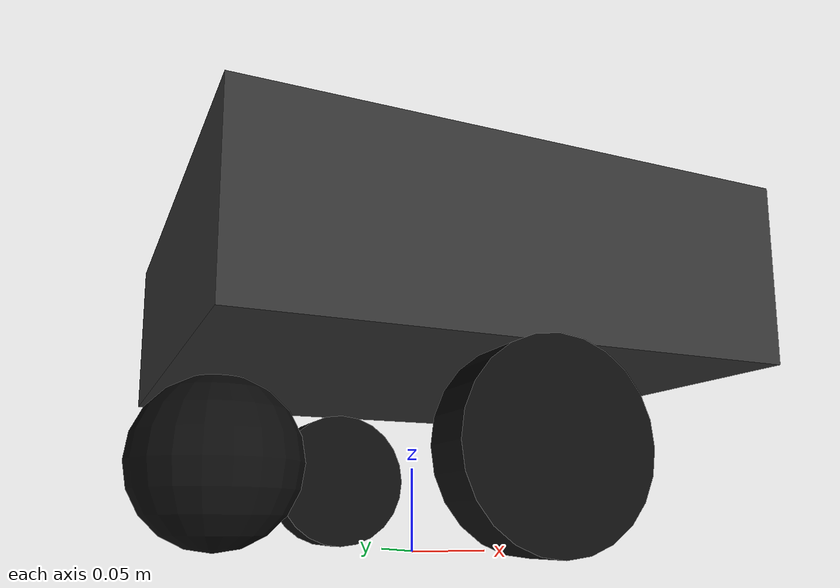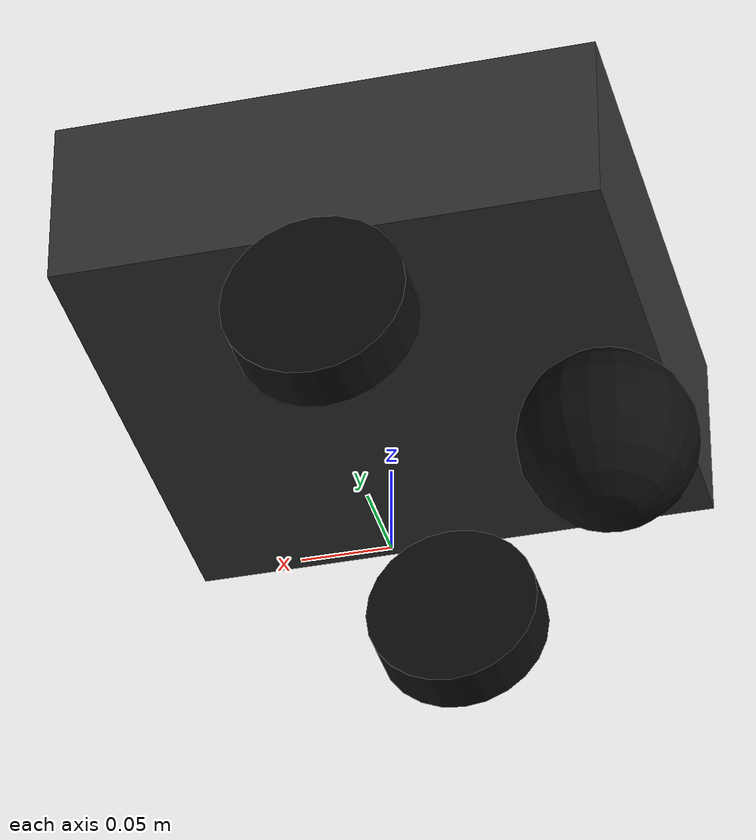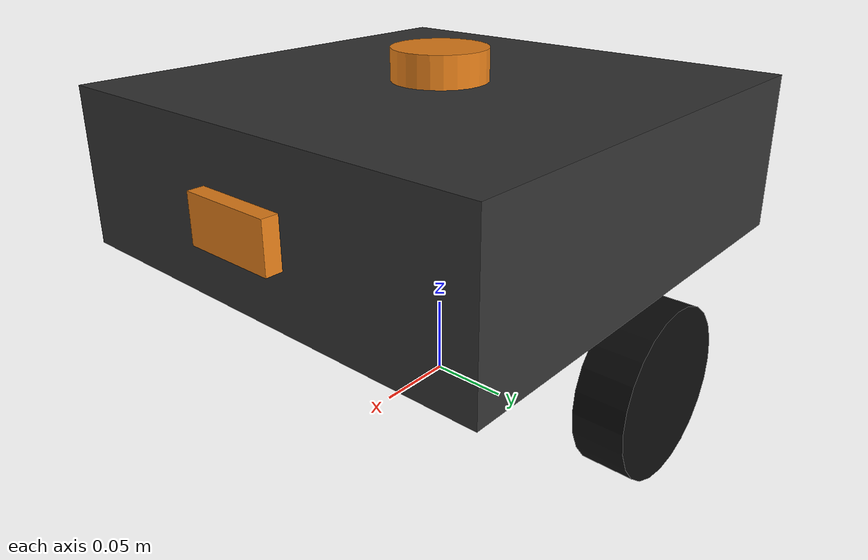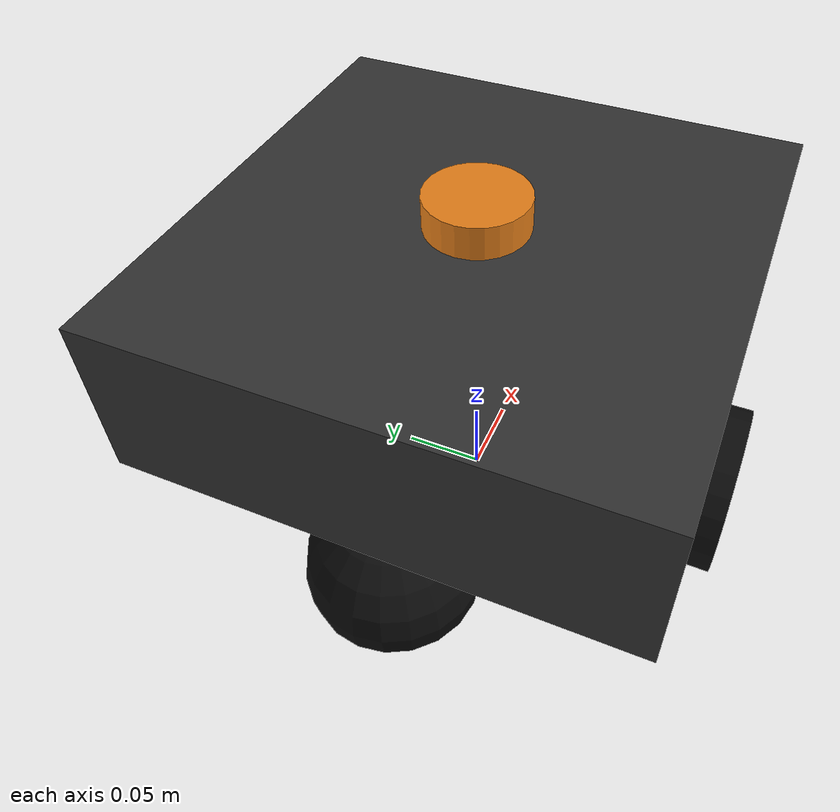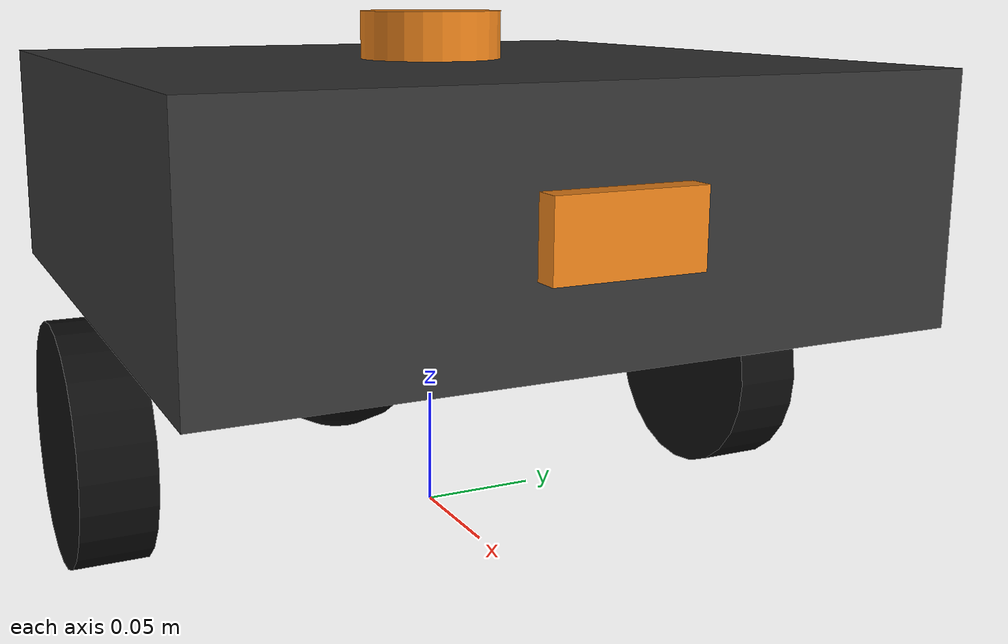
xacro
<?xml version="1.0"?>
<robot name="semantic_nav_robot" xmlns:xacro="http://www.ros.org/wiki/xacro">

  <xacro:property name="chassis_x" value="0.30"/>
  <xacro:property name="chassis_y" value="0.30"/>
  <xacro:property name="chassis_z" value="0.10"/>
  <xacro:property name="wheel_radius" value="0.05"/>
  <xacro:property name="wheel_width" value="0.03"/>
  <xacro:property name="wheel_separation" value="0.30"/>
  <!-- base_link origin sits at wheel-axle height above base_footprint (ground) -->
  <xacro:property name="axle_height" value="${wheel_radius}"/>
  <!-- chassis box center, relative to base_link -->
  <xacro:property name="chassis_z_offset" value="0.10"/>
  <xacro:property name="caster_x" value="-0.12"/>

  <xacro:property name="lidar_xyz" value="0 0 0.15"/>
  <xacro:property name="camera_xyz" value="0.15 0 0.10"/>
  <!-- REP-103 mounting frame -> optical frame (z-forward, x-right, y-down) -->
  <xacro:property name="optical_rpy" value="${-pi/2} 0 ${-pi/2}"/>

  <material name="chassis_grey"><color rgba="0.2 0.2 0.2 1"/></material>
  <material name="wheel_black"><color rgba="0.05 0.05 0.05 1"/></material>
  <material name="sensor_orange"><color rgba="0.9 0.5 0.1 1"/></material>

  <!-- ================= Links ================= -->

  <link name="base_footprint"/>

  <link name="base_link">
    <visual>
      <origin xyz="0 0 ${chassis_z_offset}" rpy="0 0 0"/>
      <geometry><box size="${chassis_x} ${chassis_y} ${chassis_z}"/></geometry>
      <material name="chassis_grey"/>
    </visual>
    <collision>
      <origin xyz="0 0 ${chassis_z_offset}" rpy="0 0 0"/>
      <geometry><box size="${chassis_x} ${chassis_y} ${chassis_z}"/></geometry>
    </collision>
    <inertial>
      <mass value="5.0"/>
      <origin xyz="0 0 ${chassis_z_offset}" rpy="0 0 0"/>
      <inertia ixx="0.05" ixy="0" ixz="0" iyy="0.05" iyz="0" izz="0.08"/>
    </inertial>
  </link>

  <joint name="base_footprint_joint" type="fixed">
    <parent link="base_footprint"/>
    <child link="base_link"/>
    <origin xyz="0 0 ${axle_height}" rpy="0 0 0"/>
  </joint>

  <xacro:macro name="wheel" params="prefix y_reflect">
    <link name="wheel_${prefix}_link">
      <visual>
        <origin xyz="0 0 0" rpy="1.570796327 0 0"/>
        <geometry><cylinder radius="${wheel_radius}" length="${wheel_width}"/></geometry>
        <material name="wheel_black"/>
      </visual>
      <collision>
        <origin xyz="0 0 0" rpy="1.570796327 0 0"/>
        <geometry><cylinder radius="${wheel_radius}" length="${wheel_width}"/></geometry>
      </collision>
      <inertial>
        <mass value="0.3"/>
        <origin xyz="0 0 0" rpy="0 0 0"/>
        <inertia ixx="0.0002" ixy="0" ixz="0" iyy="0.0002" iyz="0" izz="0.0003"/>
      </inertial>
    </link>
    <joint name="wheel_${prefix}_joint" type="continuous">
      <parent link="base_link"/>
      <child link="wheel_${prefix}_link"/>
      <origin xyz="0 ${y_reflect * wheel_separation / 2} 0" rpy="0 0 0"/>
      <axis xyz="0 1 0"/>
    </joint>
  </xacro:macro>
  <xacro:wheel prefix="left" y_reflect="1"/>
  <xacro:wheel prefix="right" y_reflect="-1"/>

  <link name="caster_link">
    <visual>
      <geometry><sphere radius="${wheel_radius}"/></geometry>
      <material name="wheel_black"/>
    </visual>
    <collision>
      <geometry><sphere radius="${wheel_radius}"/></geometry>
    </collision>
    <inertial>
      <mass value="0.1"/>
      <origin xyz="0 0 0" rpy="0 0 0"/>
      <inertia ixx="0.0001" ixy="0" ixz="0" iyy="0.0001" iyz="0" izz="0.0001"/>
    </inertial>
  </link>
  <joint name="caster_joint" type="fixed">
    <parent link="base_link"/>
    <child link="caster_link"/>
    <origin xyz="${caster_x} 0 0" rpy="0 0 0"/>
  </joint>
  <gazebo reference="caster_link">
    <mu1>0.01</mu1>
    <mu2>0.01</mu2>
  </gazebo>

  <!-- Lidar mount: centered on top of the chassis, above chassis-top
       height, for an unobstructed 360 degree sweep. -->
  <link name="lidar_link">
    <visual>
      <geometry><cylinder radius="0.03" length="0.04"/></geometry>
      <material name="sensor_orange"/>
    </visual>
    <inertial>
      <mass value="0.05"/>
      <origin xyz="0 0 0" rpy="0 0 0"/>
      <inertia ixx="0.00001" ixy="0" ixz="0" iyy="0.00001" iyz="0" izz="0.00001"/>
    </inertial>
  </link>
  <joint name="lidar_joint" type="fixed">
    <parent link="base_link"/>
    <child link="lidar_link"/>
    <origin xyz="${lidar_xyz}" rpy="0 0 0"/>
  </joint>

  <!-- Camera mount: front face of the chassis, facing +x (forward),
       REP-103 mounting-frame orientation (x-forward, z-up). -->
  <link name="camera_link">
    <visual>
      <geometry><box size="0.02 0.06 0.03"/></geometry>
      <material name="sensor_orange"/>
    </visual>
    <inertial>
      <mass value="0.05"/>
      <origin xyz="0 0 0" rpy="0 0 0"/>
      <inertia ixx="0.00001" ixy="0" ixz="0" iyy="0.00001" iyz="0" izz="0.00001"/>
    </inertial>
  </link>
  <joint name="camera_joint" type="fixed">
    <parent link="base_link"/>
    <child link="camera_link"/>
    <origin xyz="${camera_xyz}" rpy="0 0 0"/>
  </joint>

  <link name="camera_optical_frame"/>
  <joint name="camera_optical_joint" type="fixed">
    <parent link="camera_link"/>
    <child link="camera_optical_frame"/>
    <origin xyz="0 0 0" rpy="${optical_rpy}"/>
  </joint>

  <!-- ================= Sensors (gz-sim SDF passthrough) ================= -->

  <gazebo reference="lidar_link">
    <sensor name="gpu_lidar" type="gpu_lidar">
      <topic>scan</topic>
      <update_rate>10</update_rate>
      <always_on>true</always_on>
      <visualize>false</visualize>
      <gz_frame_id>lidar_link</gz_frame_id>
      <lidar>
        <scan>
          <horizontal>
            <samples>360</samples>
            <resolution>1</resolution>
            <min_angle>-3.14159265</min_angle>
            <max_angle>3.14159265</max_angle>
          </horizontal>
        </scan>
        <range>
          <min>0.1</min>
          <max>10.0</max>
          <resolution>0.01</resolution>
        </range>
        <!-- Same convention proven in Milestone 2: bit 0 only, so any
             visual with visibility_flags=2 (e.g. a glass wall) is
             excluded from this lidar's render pass. -->
        <visibility_mask>1</visibility_mask>
      </lidar>
    </sensor>
  </gazebo>

  <gazebo reference="camera_link">
    <sensor name="rgb_camera" type="camera">
      <topic>camera</topic>
      <update_rate>10</update_rate>
      <always_on>true</always_on>
      <visualize>false</visualize>
      <camera>
        <horizontal_fov>1.4</horizontal_fov>
        <image>
          <width>640</width>
          <height>480</height>
        </image>
        <clip>
          <near>0.05</near>
          <far>20</far>
        </clip>
        <!-- Bits 0+1 (see Milestone 2 for why not the 0xFFFFFFFF
             default): sees both plain objects and glass. -->
        <visibility_mask>3</visibility_mask>
        <optical_frame_id>camera_optical_frame</optical_frame_id>
      </camera>
    </sensor>
  </gazebo>

  <!-- ================= Drivetrain plugins (model-level) ================= -->

  <gazebo>
    <!-- Evaluation only: never bridged onto /tf or fed to localization. -->
    <plugin filename="gz-sim-pose-publisher-system" name="gz::sim::systems::PosePublisher">
      <publish_model_pose>true</publish_model_pose>
      <publish_nested_model_pose>false</publish_nested_model_pose>
      <publish_link_pose>false</publish_link_pose>
      <publish_visual_pose>false</publish_visual_pose>
      <publish_collision_pose>false</publish_collision_pose>
      <publish_sensor_pose>false</publish_sensor_pose>
      <use_pose_vector_msg>false</use_pose_vector_msg>
      <static_publisher>false</static_publisher>
      <update_frequency>20</update_frequency>
    </plugin>
    <plugin filename="gz-sim-diff-drive-system" name="gz::sim::systems::DiffDrive">
      <left_joint>wheel_left_joint</left_joint>
      <right_joint>wheel_right_joint</right_joint>
      <wheel_separation>${wheel_separation}</wheel_separation>
      <wheel_radius>${wheel_radius}</wheel_radius>
      <max_linear_acceleration>1</max_linear_acceleration>
      <min_linear_acceleration>-1</min_linear_acceleration>
      <max_angular_acceleration>2</max_angular_acceleration>
      <min_angular_acceleration>-2</min_angular_acceleration>
      <max_linear_velocity>0.5</max_linear_velocity>
      <min_linear_velocity>-0.5</min_linear_velocity>
      <max_angular_velocity>1.5</max_angular_velocity>
      <min_angular_velocity>-1.5</min_angular_velocity>
      <topic>cmd_vel</topic>
      <odom_topic>odom</odom_topic>
      <tf_topic>tf</tf_topic>
      <frame_id>odom</frame_id>
      <child_frame_id>base_footprint</child_frame_id>
      <odom_publish_frequency>30</odom_publish_frequency>
    </plugin>

    <plugin filename="gz-sim-joint-state-publisher-system" name="gz::sim::systems::JointStatePublisher">
      <joint_name>wheel_left_joint</joint_name>
      <joint_name>wheel_right_joint</joint_name>
      <topic>joint_states</topic>
      <update_rate>30</update_rate>
    </plugin>
  </gazebo>

</robot>
